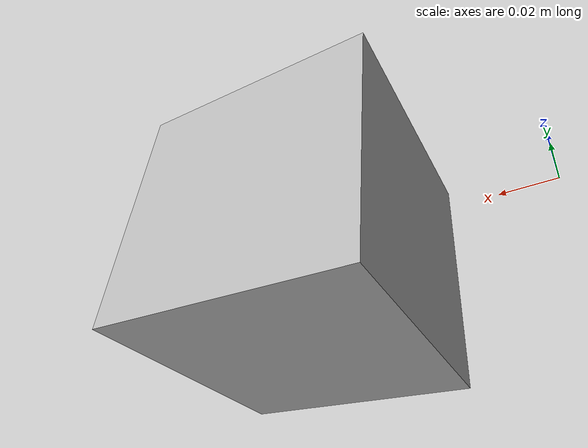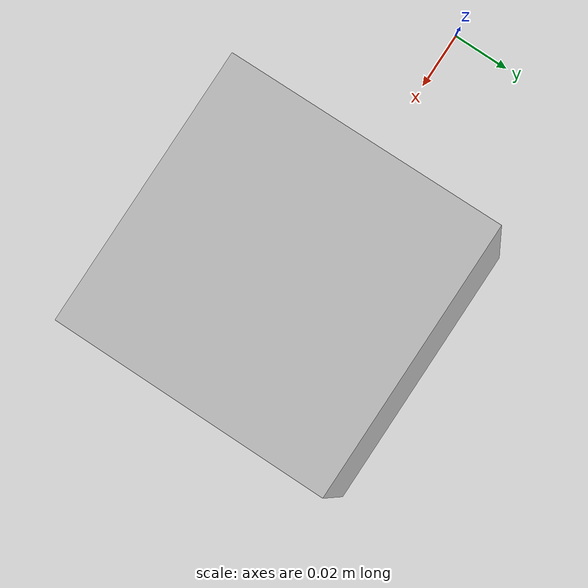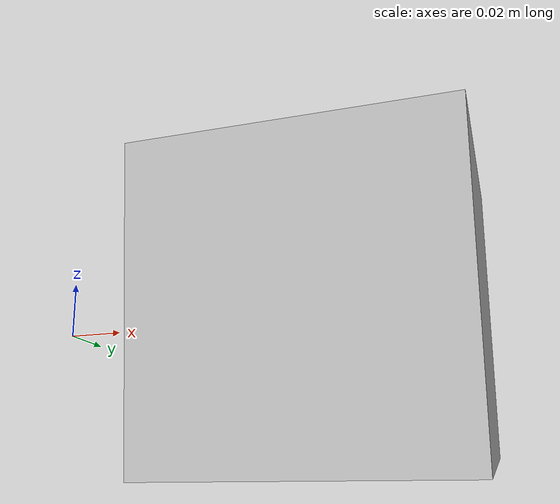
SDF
<?xml version="1.0"?>
<sdf version="1.4">
  <model name="test_model">
  <link name="test_link">
    <pose>0.1 0 0 0.1 0 0</pose>
    <inertial>
      <mass>not_read</mass>
    </inertial>
    <collision>
      <geometry>
        <box><size>0.1 0.1 0.1</size></box>
      </geometry>
    </collision>
    <visual>
      <geometry>
        <box><size>0.1 0.1 0.1</size></box>
      </geometry>
      <material>
        <script>Gazebo/Purple</script>
      </material>
      <transparency>0.1</transparency>
    </visual>
  </link>
  </model>
</sdf>
